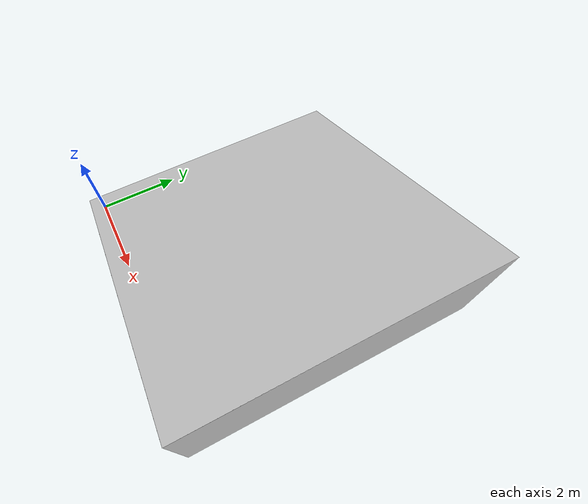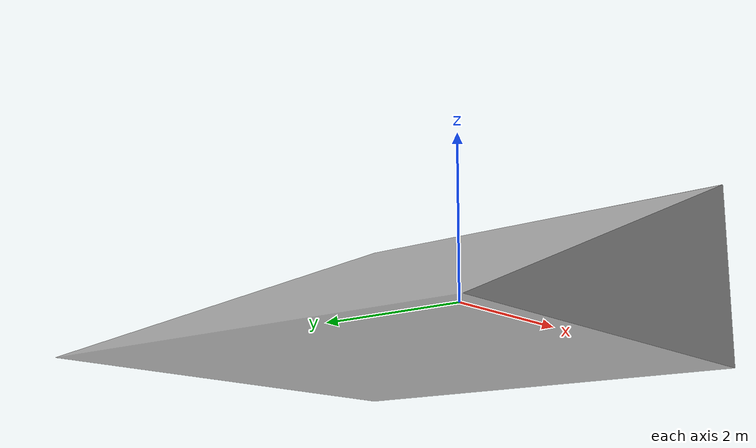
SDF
<?xml version="1.0" ?>
<sdf version="1.6">
  <model name="SLOPE">
    <static>true</static>
    <link name="link">
      <collision name="collision">
        <geometry>
          <mesh>
            <scale>1 1 1</scale>
            <uri>model://slope/meshes/slope.dae</uri>
          </mesh>
        </geometry>
      </collision>
      <visual name="visual">
        <geometry>
          <mesh>
            <scale>1 1 1</scale>
            <uri>model://slope/meshes/slope.dae</uri>
          </mesh>
        </geometry>
      </visual>
    </link>
  </model>
</sdf>
